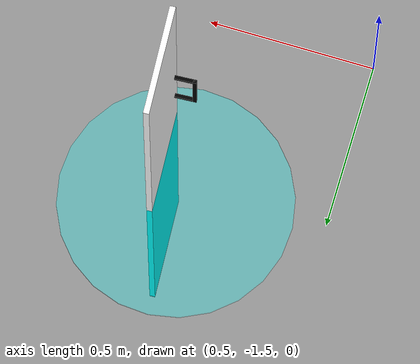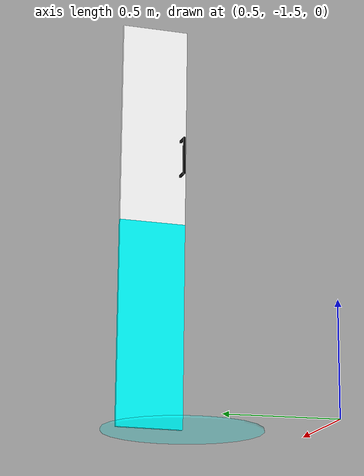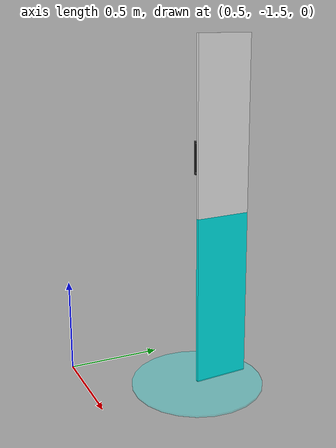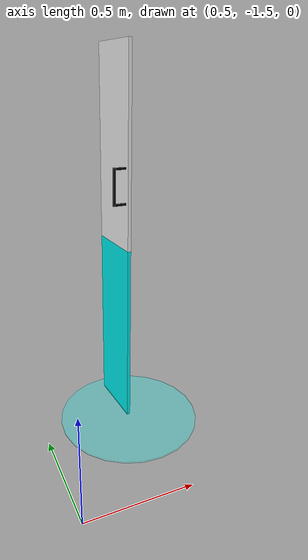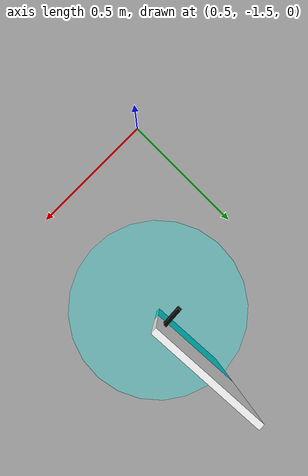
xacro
<?xml version="1.0" ?>
<robot name="shelf" xmlns:xacro="http://www.ros.org/wiki/xacro">
    <xacro:arg name="prefix" default=""/>
    <xacro:arg name="fixed" default="true"/>
    <xacro:arg name="height" default="0.0"/>
    <xacro:arg name="origin_x" default="0.943"/>
    <xacro:arg name="shelf_y" default="-0.952"/>
    <xacro:arg name="shelf_z" default="0.903"/>

    <xacro:arg name="articulation_mismatch_offset" default="0.0"/>
    <xacro:arg name="hinge_offset_x" default="0.004"/>
    <xacro:arg name="hinge_offset_y" default="0.027"/>

    <xacro:property name="prefix" default="$(arg prefix)"/>
    <xacro:property name="origin_x" default="$(arg origin_x)"/>
    <xacro:property name="shelf_y" default="$(arg shelf_y)"/>
    <xacro:property name="shelf_z" default="$(arg shelf_z)"/>
    <xacro:property name="height" default="$(arg height)"/>
    <xacro:property name="hinge_offset_x" default="$(arg hinge_offset_x)"/>
    <xacro:property name="hinge_offset_y" default="$(arg hinge_offset_y)"/>
    <xacro:property name="articulation_mismatch_offset" default="$(arg articulation_mismatch_offset)"/>

    <xacro:property name="door_length" default="0.295"/>
    <xacro:property name="door_height" default="0.90"/>
    <xacro:property name="door_width" default="0.016"/>
    <xacro:property name="handle_height" default="0.056"/>
    <xacro:property name="handle_length" default="0.16"/>
    <xacro:property name="handle_offset" default="0.27"/>

    <xacro:macro name="box_inertia" params="m x y z">
        <inertial>
            <origin rpy="0 0 0" xyz="0 0 0"/>
            <mass value="${m}"/>
            <inertia ixx="${0.0833 * m * (y**2 + z**2)}"
                     ixy="0"
                     ixz="0"
                     iyy="${0.0833 * m * (x**2 + z**2)}"
                     iyz="0"
                     izz="${0.0833 * m * (x**2 + y**2)}"/>
        </inertial>
    </xacro:macro>

    <xacro:if value="$(arg fixed)">
        <link name="world"/>
        <joint name="fixed" type="fixed">
            <parent link="world"/>
            <child link="${prefix}shelf"/>
            <origin xyz="${origin_x} ${shelf_y} ${shelf_z}" rpy="-0.008 -0.001 -3.085"/>
        </joint>
    </xacro:if>

    <link name="${prefix}shelf">
        <xacro:box_inertia m="4" x="${door_width}" y="${door_length}" z="${shelf_z}"/>
        <visual>
            <origin rpy="0 0 0" xyz="0 -${door_length/2} ${-shelf_z/2}"/>
            <geometry>
                <box size="${door_width} ${door_length} ${shelf_z}"/>
            </geometry>
            <material name="shelf_material">
                <color rgba="0.0 1.0 1.0 1"/>
            </material>
        </visual>
        <visual>
            <origin xyz="0 0 ${-shelf_z}" rpy="0 0 0" />
            <geometry>
                <cylinder radius="0.35" length="0.01"/>
            </geometry>
            <material name="Cyan">
                <color rgba="0 1.0 1.0 0.3"/>
            </material>
        </visual>

        <collision>
            <origin rpy="0 0 0" xyz="0 -${door_length/2} ${-shelf_z/2}"/>
            <geometry>
                <box size="${door_width} ${door_length} ${shelf_z}"/>
            </geometry>
        </collision>
    </link>

    <link name="${prefix}door">
        <xacro:box_inertia m="5.8" x="${door_width}" y="${door_length}" z="${door_height}"/>
        <visual>
            <origin rpy="0 0 0" xyz="0 ${door_length/2} 0"/>
            <geometry>
                <box size="${door_width} ${door_length} ${door_height}"/>
            </geometry>
            <material name="door_material">
                <color rgba="1.0 1.0 1.0 1"/>
            </material>
        </visual>
        <collision>
            <origin rpy="0 0 0" xyz="0 ${door_length/2} 0"/>
            <geometry>
                <box size="${door_width} ${door_length} ${door_height}"/>
            </geometry>
        </collision>
    </link>

    <link name="${prefix}door_hinge"/>
    <joint name="${prefix}door_hinge_joint" type="fixed">
        <parent link="${prefix}shelf"/>
        <child link="${prefix}door_hinge"/>
        <dynamics damping="2.0" friction="0.1"/>
        <origin xyz="0 -${door_length} ${door_height/2}"/>
    </joint>

    <link name="${prefix}axis_link"/>
    <joint name="${prefix}axis_joint" type="fixed">
        <parent link="${prefix}door_hinge"/>
        <child link="${prefix}axis_link"/>
        <origin xyz="${hinge_offset_x} ${hinge_offset_y + articulation_mismatch_offset} -0.150"/>
    </joint>

    <joint name="articulation_joint" type="revolute">
        <parent link="${prefix}axis_link"/>
        <child link="${prefix}measured_joint_link"/>
        <dynamics damping="2.0" friction="4.0"/>
        <origin xyz="0 0 0"/>
        <axis xyz="0 0 -1"/>
        <limit effort="100" lower="0" upper="1.57" velocity="10.0"/>
    </joint>

    <joint name="${prefix}door_link" type="fixed">
        <parent link="${prefix}measured_joint_link"/>
        <child link="${prefix}door"/>
        <origin xyz="-${hinge_offset_x} -${hinge_offset_y + articulation_mismatch_offset} 0.150"/>
    </joint>

    <link name="${prefix}handle_link">
        <inertial>
            <origin rpy="0 0 0" xyz="0 0 0"/>
            <mass value="0.1"/>
            <inertia ixx="0.001" ixy="0" ixz="0" iyy="0.001" iyz="0" izz="0.001"/>
        </inertial>
        <visual>
            <origin rpy="0 0 0" xyz="0 0 0"/>
            <geometry>
                <box size="0.01 0.01 ${handle_length+0.01}"/>
            </geometry>
            <material name="handle_material">
                <color rgba="0.0 0.0 0.0 1"/>
            </material>
        </visual>
        <collision>
            <origin rpy="0 0 0" xyz="0 0 0"/>
            <geometry>
                <box size="0.01 0.01 ${handle_length+0.01}"/>
            </geometry>
            <material name="">
                <contact name="steel"/>
            </material>
        </collision>
    </link>

    <link name="${prefix}handle_support_left">
        <inertial>
            <origin rpy="0 0 0" xyz="0 0 0"/>
            <mass value="0.1"/>
            <inertia ixx="0.001" ixy="0" ixz="0" iyy="0.001" iyz="0" izz="0.001"/>
        </inertial>
        <visual>
            <origin rpy="0 0 0" xyz="0 0 0"/>
            <geometry>
                <box size="${handle_height} 0.01 0.01"/>
            </geometry>
            <material name="handle_material">
                <color rgba="0.0 0.0 0.0 1"/>
            </material>
        </visual>
        <collision>
            <origin rpy="0 0 0" xyz="0 0 0"/>
            <geometry>
                <box size="${handle_height} 0.01 0.01"/>
            </geometry>
            <material name="">
                <contact name="steel"/>
            </material>
        </collision>
    </link>

    <link name="${prefix}handle_support_right">
        <inertial>
            <origin rpy="0 0 0" xyz="0 0 0"/>
            <mass value="0.1"/>
            <inertia ixx="0.001" ixy="0" ixz="0" iyy="0.001" iyz="0" izz="0.001"/>
        </inertial>
        <visual>
            <origin rpy="0 0 0" xyz="0 0 0"/>
            <geometry>
                <box size="${handle_height} 0.01 0.01"/>
            </geometry>
            <material name="handle_material">
                <color rgba="0.0 0.0 0.0 1"/>
            </material>
        </visual>
        <collision>
            <origin rpy="0 0 0" xyz="0 0 0"/>
            <geometry>
                <box size="${handle_height} 0.01 0.01"/>
            </geometry>
            <material name="">
                <contact name="steel"/>
            </material>
        </collision>
    </link>

    <joint name="${prefix}handle_joint" type="fixed">
        <parent link="${prefix}door"/>
        <child link="${prefix}handle_link"/>
        <origin xyz="${handle_height + door_width/2} ${handle_offset} -0.15"
                rpy="0 0 0"/> <!-- height handle + half the width door, 0.30 minus some offset -->
    </joint>

    <joint name="${prefix}handle_support_left_joint" type="fixed">
        <parent link="${prefix}handle_link"/>
        <child link="${prefix}handle_support_left"/>
        <origin xyz="-${handle_height/2} 0 ${handle_length/2}" rpy="0 0 0"/>
    </joint>

    <joint name="${prefix}handle_support_right_joint" type="fixed">
        <parent link="${prefix}handle_link"/>
        <child link="${prefix}handle_support_right"/>
        <origin xyz="-${handle_height/2} 0 -${handle_length/2}" rpy="0 0 0"/>
    </joint>

    <link name="${prefix}measured_joint_link"/>

    <link name="${prefix}measured_joint_link_test"/>
    <joint name="${prefix}measured_test_handle_joint" type="fixed">
        <parent link="${prefix}handle_link"/>
        <child link="${prefix}measured_joint_link_test"/>
        <origin xyz="-0.06 -0.243 0.0" rpy="0 0 0"/>
    </joint>

</robot>
